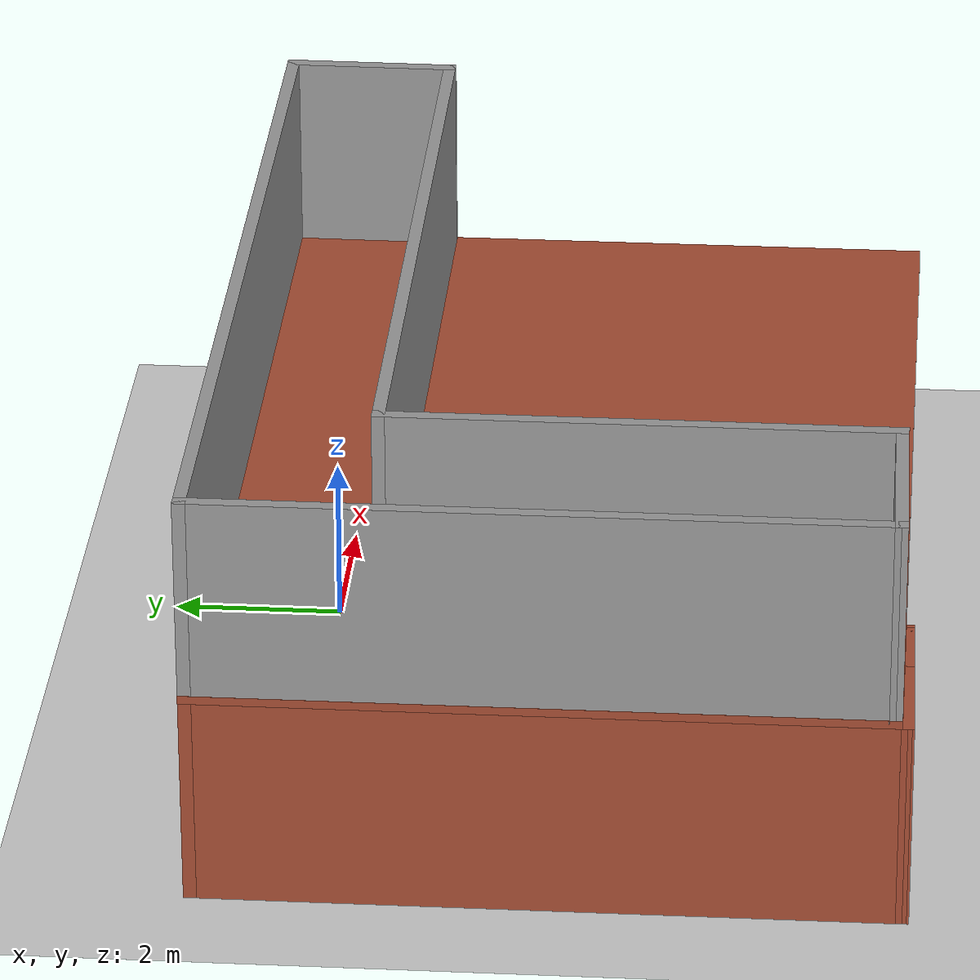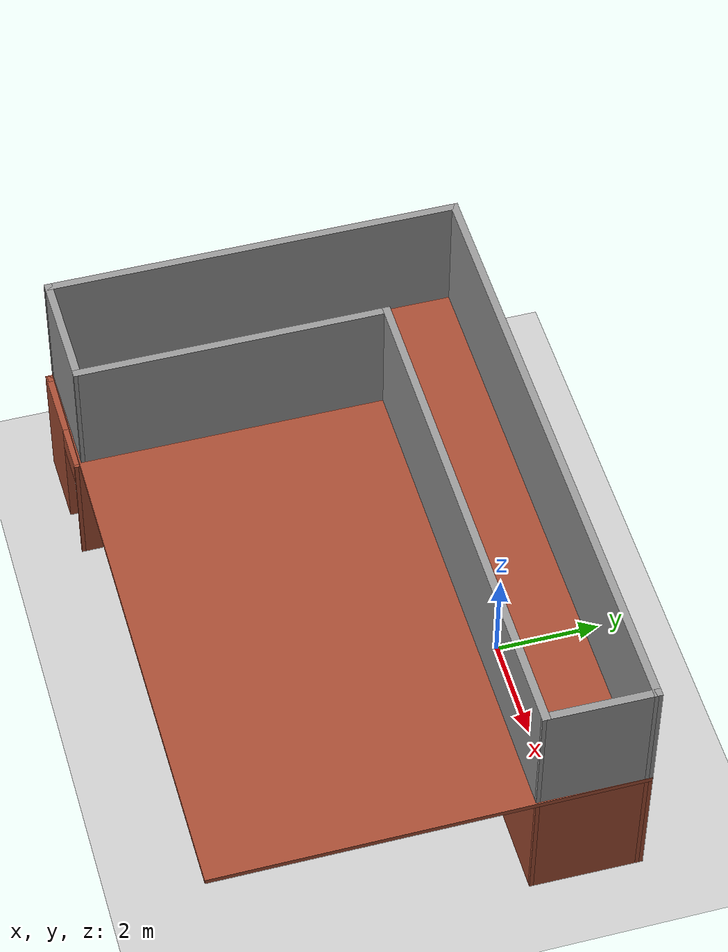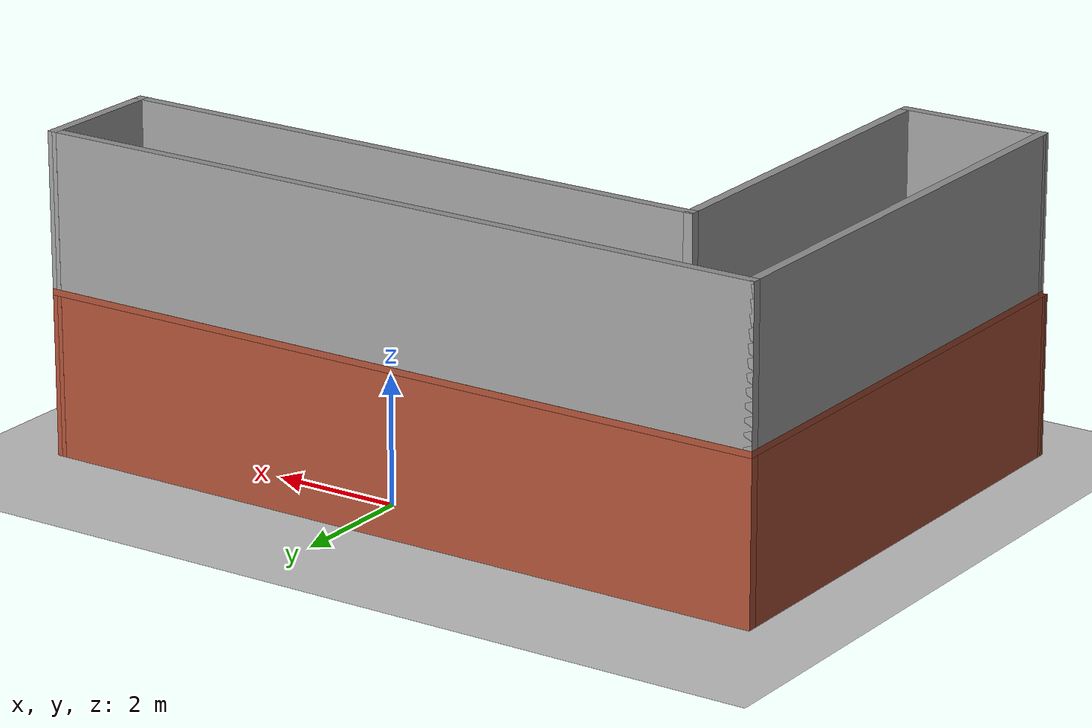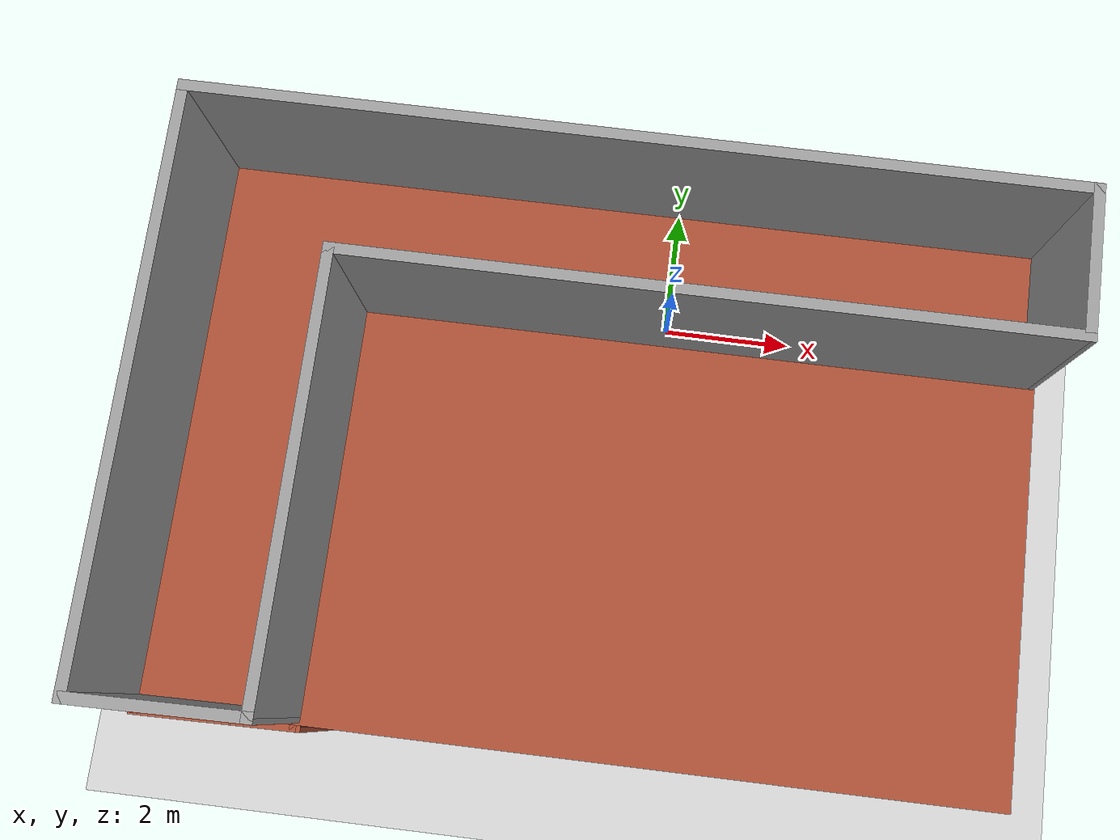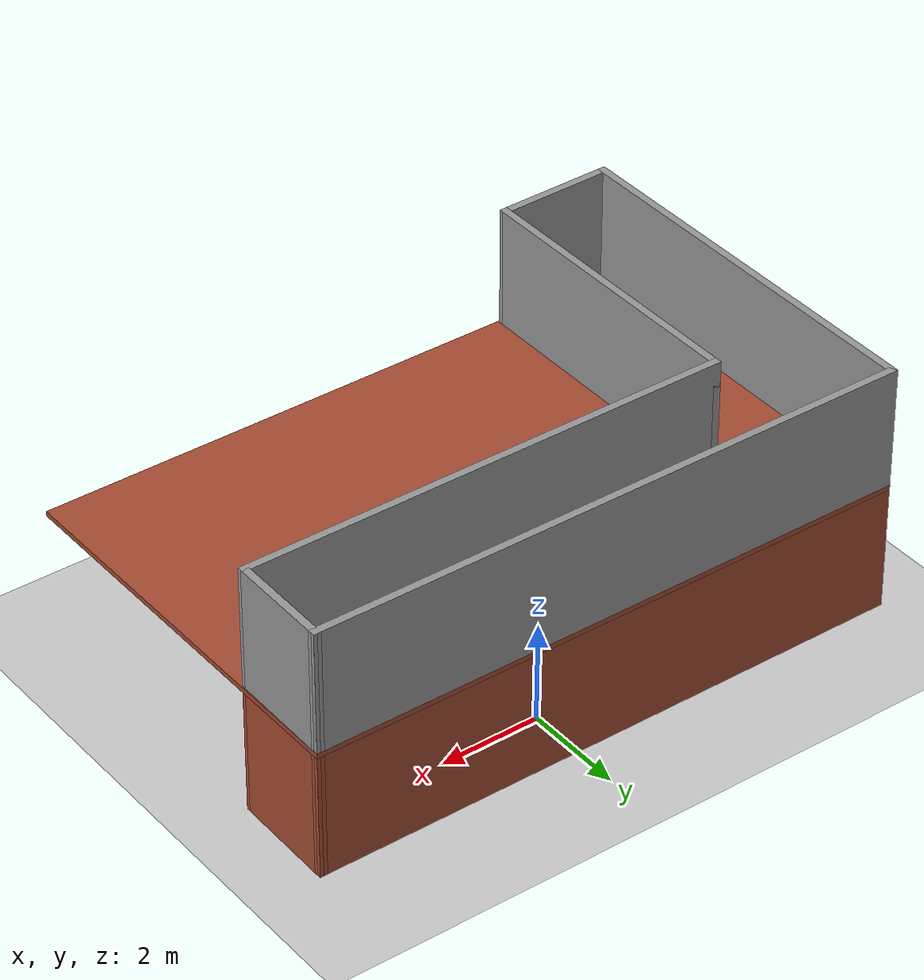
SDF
<sdf version="1.7">
 <world name="default">
  <light name="sun" type="directional">
   <pose>0 0 10 0 -0 0</pose>
   <diffuse>0.8 0.8 0.8 1</diffuse>
   <specular>0.2 0.2 0.2 1</specular>
   <attenuation>
    <range>1000</range>
    <constant>0.9</constant>
    <linear>0.01</linear>
    <quadratic>0.001</quadratic>
   </attenuation>
   <direction>-0.5 0.1 -0.9</direction>
   <spot><inner_angle>0</inner_angle><outer_angle>0</outer_angle><falloff>0</falloff></spot>
  </light>
  <model name="ground_plane">
   <static>1</static>
   <link name="link">
    <collision name="collision">
     <geometry><plane><normal>0 0 1</normal><size>100 100</size></plane></geometry>
     <surface><friction><ode><mu>100</mu><mu2>50</mu2></ode></friction></surface>
    </collision>
    <visual name="visual">
     <cast_shadows>0</cast_shadows>
     <geometry><plane><normal>0 0 1</normal><size>100 100</size></plane></geometry>
     <material>
      <script><uri>file://media/materials/scripts/gazebo.material</uri><name>Gazebo/Grey</name></script>
     </material>
    </visual>
   </link>
  </model>
  <gravity>0 0 -9.8</gravity>
  <magnetic_field>6e-06 2.3e-05 -4.2e-05</magnetic_field>
  <atmosphere type="adiabatic"/>
  <physics type="ode">
   <max_step_size>0.001</max_step_size>
   <real_time_factor>1</real_time_factor>
   <real_time_update_rate>1000</real_time_update_rate>
  </physics>
  <scene><ambient>0.4 0.4 0.4 1</ambient><background>0.7 0.7 0.7 1</background><shadows>1</shadows></scene>
  <spherical_coordinates>
   <surface_model>EARTH_WGS84</surface_model>
   <latitude_deg>0</latitude_deg>
   <longitude_deg>0</longitude_deg>
   <elevation>0</elevation>
   <heading_deg>0</heading_deg>
  </spherical_coordinates>
  <model name="hhhh.world">
   <pose>-0.737626 -2.96112 0 0 -0 0</pose>
   <link name="Floor_0">
    <collision name="Floor_0_Collision">
     <geometry><box><size>12.0019 8.00193 0.1</size></box></geometry>
     <pose>0 0 0.05 0 -0 0</pose>
    </collision>
    <visual name="Floor_0_Visual">
     <pose>0 0 0.05 0 -0 0</pose>
     <geometry><box><size>12.0019 8.00193 0.1</size></box></geometry>
     <material>
      <script><uri>file://media/materials/scripts/gazebo.material</uri><name>Gazebo/Bricks</name></script>
      <ambient>1 1 1 1</ambient>
     </material>
     <meta><layer>1</layer></meta>
    </visual>
    <pose>-0 0.0665 2.5 0 -0 0</pose>
   </link>
   <link name="Wall_0">
    <collision name="Wall_0_Collision">
     <geometry><box><size>12 0.15 2.5</size></box></geometry>
     <pose>0 0 1.25 0 -0 0</pose>
    </collision>
    <visual name="Wall_0_Visual">
     <pose>0 0 1.25 0 -0 0</pose>
     <geometry><box><size>12 0.15 2.5</size></box></geometry>
     <material>
      <script><uri>file://media/materials/scripts/gazebo.material</uri><name>Gazebo/Bricks</name></script>
      <ambient>1 1 1 1</ambient>
     </material>
     <meta><layer>0</layer></meta>
    </visual>
    <pose>0.000109 3.99161 0 0 -0 0</pose>
   </link>
   <link name="Wall_11">
    <collision name="Wall_11_Collision">
     <geometry><box><size>2.11805 0.15 2.5</size></box></geometry>
     <pose>0 0 1.25 0 -0 0</pose>
    </collision>
    <visual name="Wall_11_Visual">
     <pose>0 0 1.25 0 -0 0</pose>
     <geometry><box><size>2.11805 0.15 2.5</size></box></geometry>
     <material>
      <script><uri>file://media/materials/scripts/gazebo.material</uri><name>Gazebo/Bricks</name></script>
      <ambient>1 1 1 1</ambient>
     </material>
     <meta><layer>0</layer></meta>
    </visual>
    <pose>5.91384 3.00765 0 0 -0 -1.58225</pose>
   </link>
   <link name="Wall_13">
    <collision name="Wall_13_Collision">
     <geometry><box><size>12 0.15 2.5</size></box></geometry>
     <pose>0 0 1.25 0 -0 0</pose>
    </collision>
    <visual name="Wall_13_Visual">
     <pose>0 0 1.25 0 -0 0</pose>
     <geometry><box><size>12 0.15 2.5</size></box></geometry>
     <material>
      <script><uri>file://media/materials/scripts/gazebo.material</uri><name>Gazebo/Grey</name></script>
      <ambient>1 1 1 1</ambient>
     </material>
     <meta><layer>1</layer></meta>
    </visual>
    <pose>0.000109 3.99161 2.5 0 -0 0</pose>
   </link>
   <link name="Wall_14">
    <collision name="Wall_14_Collision">
     <geometry><box><size>9.75 0.15 2.5</size></box></geometry>
     <pose>0 0 1.25 0 -0 0</pose>
    </collision>
    <visual name="Wall_14_Visual">
     <pose>0 0 1.25 0 -0 0</pose>
     <geometry><box><size>9.75 0.15 2.5</size></box></geometry>
     <material>
      <script><uri>file://media/materials/scripts/gazebo.material</uri><name>Gazebo/Grey</name></script>
      <ambient>1 1 1 1</ambient>
     </material>
     <meta><layer>1</layer></meta>
    </visual>
    <pose>1.10257 2.02368 2.5 0 -0 0</pose>
   </link>
   <link name="Wall_15">
    <collision name="Wall_15_Collision">
     <geometry><box><size>8 0.15 2.5</size></box></geometry>
     <pose>0 0 1.25 0 -0 0</pose>
    </collision>
    <visual name="Wall_15_Visual">
     <pose>0 0 1.25 0 -0 0</pose>
     <geometry><box><size>8 0.15 2.5</size></box></geometry>
     <material>
      <script><uri>file://media/materials/scripts/gazebo.material</uri><name>Gazebo/Grey</name></script>
      <ambient>1 1 1 1</ambient>
     </material>
     <meta><layer>1</layer></meta>
    </visual>
    <pose>-5.92489 0.066609 2.5 0 -0 -1.5708</pose>
   </link>
   <link name="Wall_16">
    <collision name="Wall_16_Collision">
     <geometry><box><size>6 0.15 2.5</size></box></geometry>
     <pose>0 0 1.25 0 -0 0</pose>
    </collision>
    <visual name="Wall_16_Visual">
     <pose>0 0 1.25 0 -0 0</pose>
     <geometry><box><size>6 0.15 2.5</size></box></geometry>
     <material>
      <script><uri>file://media/materials/scripts/gazebo.material</uri><name>Gazebo/Grey</name></script>
      <ambient>1 1 1 1</ambient>
     </material>
     <meta><layer>1</layer></meta>
    </visual>
    <pose>-3.69743 -0.901315 2.5 0 -0 -1.5708</pose>
   </link>
   <link name="Wall_17">
    <collision name="Wall_17_Collision">
     <geometry><box><size>2.37769 0.15 2.5</size></box></geometry>
     <pose>0 0 1.25 0 -0 0</pose>
    </collision>
    <visual name="Wall_17_Visual">
     <pose>0 0 1.25 0 -0 0</pose>
     <geometry><box><size>2.37769 0.15 2.5</size></box></geometry>
     <material>
      <script><uri>file://media/materials/scripts/gazebo.material</uri><name>Gazebo/Grey</name></script>
      <ambient>1 1 1 1</ambient>
     </material>
     <meta><layer>1</layer></meta>
    </visual>
    <pose>-4.81116 -3.84235 2.5 0 -0 0.014399</pose>
   </link>
   <link name="Wall_18">
    <collision name="Wall_18_Collision">
     <geometry><box><size>2.11805 0.15 2.5</size></box></geometry>
     <pose>0 0 1.25 0 -0 0</pose>
    </collision>
    <visual name="Wall_18_Visual">
     <pose>0 0 1.25 0 -0 0</pose>
     <geometry><box><size>2.11805 0.15 2.5</size></box></geometry>
     <material>
      <script><uri>file://media/materials/scripts/gazebo.material</uri><name>Gazebo/Grey</name></script>
      <ambient>1 1 1 1</ambient>
     </material>
     <meta><layer>1</layer></meta>
    </visual>
    <pose>5.91384 3.00765 2.5 0 -0 -1.58225</pose>
   </link>
   <link name="Wall_3">
    <collision name="Wall_3_Collision">
     <geometry><box><size>9.75 0.15 2.5</size></box></geometry>
     <pose>0 0 1.25 0 -0 0</pose>
    </collision>
    <visual name="Wall_3_Visual">
     <pose>0 0 1.25 0 -0 0</pose>
     <geometry><box><size>9.75 0.15 2.5</size></box></geometry>
     <material>
      <script><uri>file://media/materials/scripts/gazebo.material</uri><name>Gazebo/Bricks</name></script>
      <ambient>1 1 1 1</ambient>
     </material>
     <meta><layer>0</layer></meta>
    </visual>
    <pose>1.10257 2.02368 0 0 -0 0</pose>
   </link>
   <link name="Wall_5">
    <collision name="Wall_5_Collision">
     <geometry><box><size>8.1064 0.15 2.5</size></box></geometry>
     <pose>0 0 1.25 0 -0 0</pose>
    </collision>
    <visual name="Wall_5_Visual">
     <pose>0 0 1.25 0 -0 0</pose>
     <geometry><box><size>8.1064 0.15 2.5</size></box></geometry>
     <material>
      <script><uri>file://media/materials/scripts/gazebo.material</uri><name>Gazebo/Bricks</name></script>
      <ambient>1 1 1 1</ambient>
     </material>
     <meta><layer>0</layer></meta>
    </visual>
    <pose>-5.92489 0.013409 0 0 -0 -1.5708</pose>
   </link>
   <link name="Wall_7">
    <collision name="Wall_7_Collision">
     <geometry><box><size>6.1064 0.15 2.5</size></box></geometry>
     <pose>0 0 1.25 0 -0 0</pose>
    </collision>
    <visual name="Wall_7_Visual">
     <pose>0 0 1.25 0 -0 0</pose>
     <geometry><box><size>6.1064 0.15 2.5</size></box></geometry>
     <material>
      <script><uri>file://media/materials/scripts/gazebo.material</uri><name>Gazebo/Bricks</name></script>
      <ambient>1 1 1 1</ambient>
     </material>
     <meta><layer>0</layer></meta>
    </visual>
    <pose>-3.69743 -0.954516 0 0 -0 -1.5708</pose>
   </link>
   <link name="Wall_9">
    <pose>-4.81116 -3.97535 0 0 -0 0.014399</pose>
    <visual name="Wall_9_Visual_0">
     <pose>-0.480199 0 1.25 0 -0 0</pose>
     <geometry><box><size>1.41729 0.15 2.5</size></box></geometry>
     <material>
      <script><uri>file://media/materials/scripts/gazebo.material</uri><name>Gazebo/Bricks</name></script>
      <ambient>1 1 1 1</ambient>
     </material>
     <meta><layer>0</layer></meta>
    </visual>
    <collision name="Wall_9_Collision_0">
     <geometry><box><size>1.41729 0.15 2.5</size></box></geometry>
     <pose>-0.480199 0 1.25 0 -0 0</pose>
    </collision>
    <visual name="Wall_9_Visual_1">
     <pose>1.15864 0 1.25 0 -0 0</pose>
     <geometry><box><size>0.060398 0.15 2.5</size></box></geometry>
     <material>
      <script><uri>file://media/materials/scripts/gazebo.material</uri><name>Gazebo/Bricks</name></script>
      <ambient>1 1 1 1</ambient>
     </material>
     <meta><layer>0</layer></meta>
    </visual>
    <collision name="Wall_9_Collision_1">
     <geometry><box><size>0.060398 0.15 2.5</size></box></geometry>
     <pose>1.15864 0 1.25 0 -0 0</pose>
    </collision>
    <visual name="Wall_9_Visual_2">
     <pose>0.678447 0 2.25 0 -0 0</pose>
     <geometry><box><size>0.9 0.15 0.5</size></box></geometry>
     <material>
      <script><uri>file://media/materials/scripts/gazebo.material</uri><name>Gazebo/Bricks</name></script>
      <ambient>1 1 1 1</ambient>
     </material>
     <meta><layer>0</layer></meta>
    </visual>
    <collision name="Wall_9_Collision_2">
     <geometry><box><size>0.9 0.15 0.5</size></box></geometry>
     <pose>0.678447 0 2.25 0 -0 0</pose>
    </collision>
   </link>
   <static>1</static>
  </model>
 </world>
</sdf>
